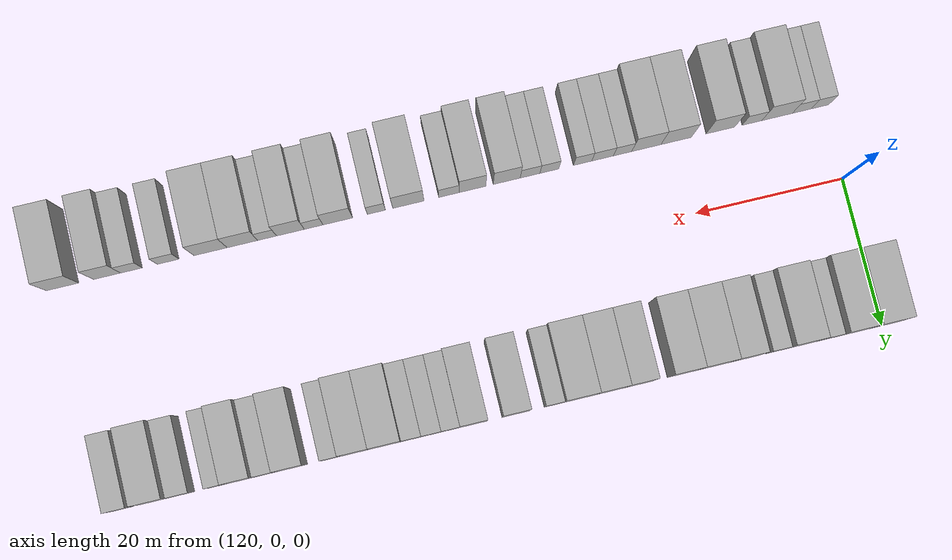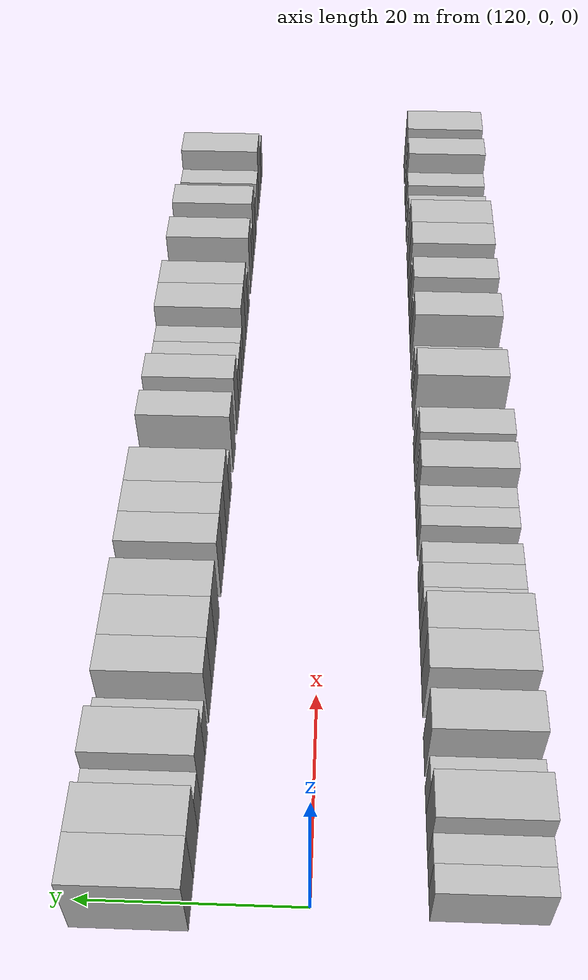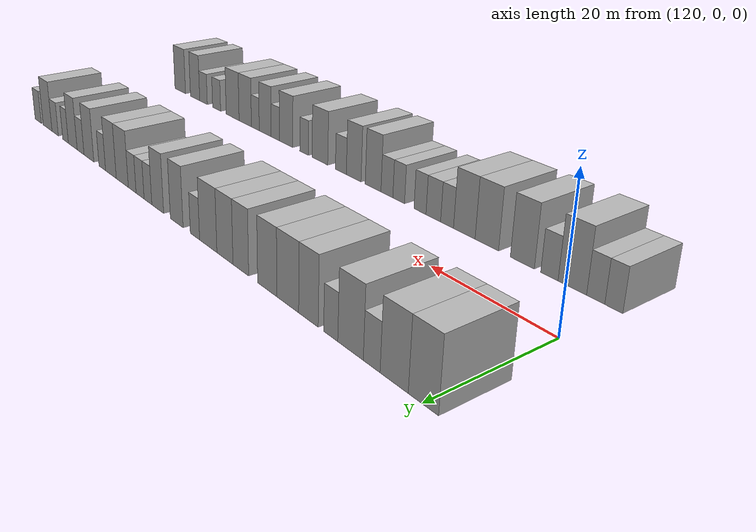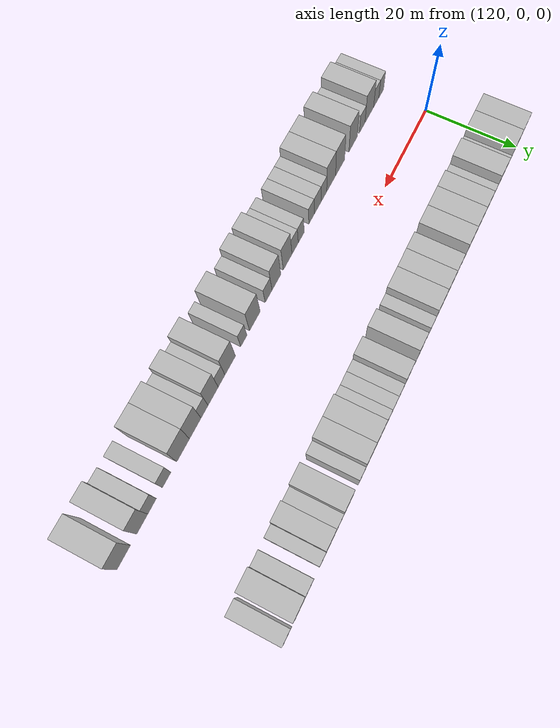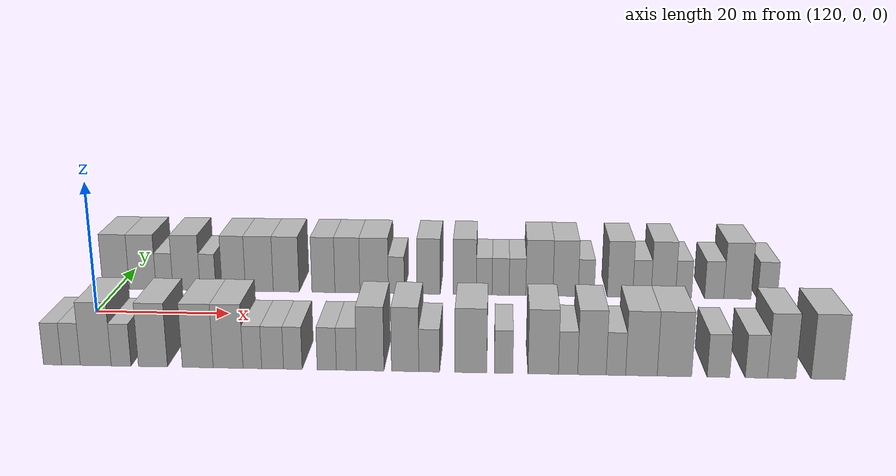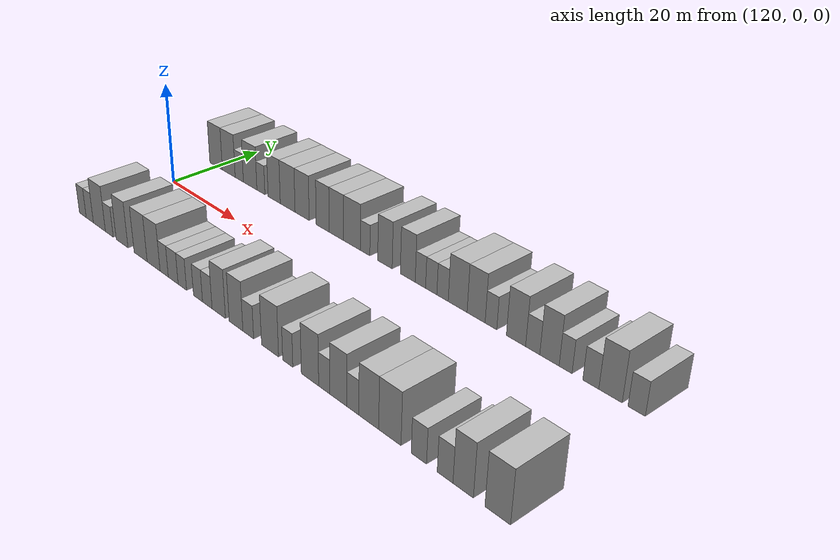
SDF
<sdf version="1.6">
 <world name="default">
  <model name="building_27">
   <static>1</static>
   <pose>119.8555 15.0000 0 0.000000 0.000000 1.570796</pose>
   <link name="link">
    <pose>0 0 4.50 0 0 0</pose>
    <collision name="collision"><geometry><box><size>10.0000 4.2542 9.0000</size></box></geometry></collision>
    <visual name="visual">
     <cast_shadows>0</cast_shadows>
     <geometry><box><size>10.0000 4.2542 9.0000</size></box></geometry>
     <material>
      <script>
       <uri>model://HANNAS_wall/materials/scripts</uri>
       <uri>model://HANNAS_wall/materials/textures</uri>
       <name>vrc/HANNAS_wall</name>
      </script>
     </material>
    </visual>
   </link>
  </model>
  <model name="building_28">
   <static>1</static>
   <pose>124.1061 15.0000 0 0.000000 0.000000 1.570796</pose>
   <link name="link">
    <pose>0 0 4.50 0 0 0</pose>
    <collision name="collision"><geometry><box><size>10.0000 4.2471 9.0000</size></box></geometry></collision>
    <visual name="visual">
     <cast_shadows>0</cast_shadows>
     <geometry><box><size>10.0000 4.2471 9.0000</size></box></geometry>
     <material>
      <script>
       <uri>model://HANNAS_wall/materials/scripts</uri>
       <uri>model://HANNAS_wall/materials/textures</uri>
       <name>vrc/HANNAS_wall</name>
      </script>
     </material>
    </visual>
   </link>
  </model>
  <model name="building_29">
   <static>1</static>
   <pose>127.5682 15.0000 0 0.000000 0.000000 1.570796</pose>
   <link name="link">
    <pose>0 0 3.00 0 0 0</pose>
    <collision name="collision"><geometry><box><size>10.0000 2.6771 6.0000</size></box></geometry></collision>
    <visual name="visual">
     <cast_shadows>0</cast_shadows>
     <geometry><box><size>10.0000 2.6771 6.0000</size></box></geometry>
     <material>
      <script>
       <uri>model://HANNAS_wall/materials/scripts</uri>
       <uri>model://HANNAS_wall/materials/textures</uri>
       <name>vrc/HANNAS_wall</name>
      </script>
     </material>
    </visual>
   </link>
  </model>
  <model name="building_30">
   <static>1</static>
   <pose>131.0592 15.0000 0 0.000000 0.000000 1.570796</pose>
   <link name="link">
    <pose>0 0 4.50 0 0 0</pose>
    <collision name="collision"><geometry><box><size>10.0000 4.3049 9.0000</size></box></geometry></collision>
    <visual name="visual">
     <cast_shadows>0</cast_shadows>
     <geometry><box><size>10.0000 4.3049 9.0000</size></box></geometry>
     <material>
      <script>
       <uri>model://HANNAS_wall/materials/scripts</uri>
       <uri>model://HANNAS_wall/materials/textures</uri>
       <name>vrc/HANNAS_wall</name>
      </script>
     </material>
    </visual>
   </link>
  </model>
  <model name="building_31">
   <static>1</static>
   <pose>134.4650 15.0000 0 0.000000 0.000000 1.570796</pose>
   <link name="link">
    <pose>0 0 3.00 0 0 0</pose>
    <collision name="collision"><geometry><box><size>10.0000 2.5067 6.0000</size></box></geometry></collision>
    <visual name="visual">
     <cast_shadows>0</cast_shadows>
     <geometry><box><size>10.0000 2.5067 6.0000</size></box></geometry>
     <material>
      <script>
       <uri>model://HANNAS_wall/materials/scripts</uri>
       <uri>model://HANNAS_wall/materials/textures</uri>
       <name>vrc/HANNAS_wall</name>
      </script>
     </material>
    </visual>
   </link>
  </model>
  <model name="building_32">
   <static>1</static>
   <pose>138.5697 15.0000 0 0.000000 0.000000 1.570796</pose>
   <link name="link">
    <pose>0 0 4.50 0 0 0</pose>
    <collision name="collision"><geometry><box><size>10.0000 3.7027 9.0000</size></box></geometry></collision>
    <visual name="visual">
     <cast_shadows>0</cast_shadows>
     <geometry><box><size>10.0000 3.7027 9.0000</size></box></geometry>
     <material>
      <script>
       <uri>model://HANNAS_wall/materials/scripts</uri>
       <uri>model://HANNAS_wall/materials/textures</uri>
       <name>vrc/HANNAS_wall</name>
      </script>
     </material>
    </visual>
   </link>
  </model>
  <model name="building_33">
   <static>1</static>
   <pose>142.6201 15.0000 0 0.000000 0.000000 1.570796</pose>
   <link name="link">
    <pose>0 0 4.50 0 0 0</pose>
    <collision name="collision"><geometry><box><size>10.0000 4.3982 9.0000</size></box></geometry></collision>
    <visual name="visual">
     <cast_shadows>0</cast_shadows>
     <geometry><box><size>10.0000 4.3982 9.0000</size></box></geometry>
     <material>
      <script>
       <uri>model://HANNAS_wall/materials/scripts</uri>
       <uri>model://HANNAS_wall/materials/textures</uri>
       <name>vrc/HANNAS_wall</name>
      </script>
     </material>
    </visual>
   </link>
  </model>
  <model name="building_34">
   <static>1</static>
   <pose>146.8642 15.0000 0 0.000000 0.000000 1.570796</pose>
   <link name="link">
    <pose>0 0 4.50 0 0 0</pose>
    <collision name="collision"><geometry><box><size>10.0000 4.0901 9.0000</size></box></geometry></collision>
    <visual name="visual">
     <cast_shadows>0</cast_shadows>
     <geometry><box><size>10.0000 4.0901 9.0000</size></box></geometry>
     <material>
      <script>
       <uri>model://HANNAS_wall/materials/scripts</uri>
       <uri>model://HANNAS_wall/materials/textures</uri>
       <name>vrc/HANNAS_wall</name>
      </script>
     </material>
    </visual>
   </link>
  </model>
  <model name="building_35">
   <static>1</static>
   <pose>152.7222 15.0000 0 0.000000 0.000000 1.570796</pose>
   <link name="link">
    <pose>0 0 4.50 0 0 0</pose>
    <collision name="collision"><geometry><box><size>10.0000 3.6258 9.0000</size></box></geometry></collision>
    <visual name="visual">
     <cast_shadows>0</cast_shadows>
     <geometry><box><size>10.0000 3.6258 9.0000</size></box></geometry>
     <material>
      <script>
       <uri>model://HANNAS_wall/materials/scripts</uri>
       <uri>model://HANNAS_wall/materials/textures</uri>
       <name>vrc/HANNAS_wall</name>
      </script>
     </material>
    </visual>
   </link>
  </model>
  <model name="building_36">
   <static>1</static>
   <pose>156.4994 15.0000 0 0.000000 0.000000 1.570796</pose>
   <link name="link">
    <pose>0 0 4.50 0 0 0</pose>
    <collision name="collision"><geometry><box><size>10.0000 3.9287 9.0000</size></box></geometry></collision>
    <visual name="visual">
     <cast_shadows>0</cast_shadows>
     <geometry><box><size>10.0000 3.9287 9.0000</size></box></geometry>
     <material>
      <script>
       <uri>model://HANNAS_wall/materials/scripts</uri>
       <uri>model://HANNAS_wall/materials/textures</uri>
       <name>vrc/HANNAS_wall</name>
      </script>
     </material>
    </visual>
   </link>
  </model>
  <model name="building_37">
   <static>1</static>
   <pose>160.6866 15.0000 0 0.000000 0.000000 1.570796</pose>
   <link name="link">
    <pose>0 0 4.50 0 0 0</pose>
    <collision name="collision"><geometry><box><size>10.0000 4.4457 9.0000</size></box></geometry></collision>
    <visual name="visual">
     <cast_shadows>0</cast_shadows>
     <geometry><box><size>10.0000 4.4457 9.0000</size></box></geometry>
     <material>
      <script>
       <uri>model://HANNAS_wall/materials/scripts</uri>
       <uri>model://HANNAS_wall/materials/textures</uri>
       <name>vrc/HANNAS_wall</name>
      </script>
     </material>
    </visual>
   </link>
  </model>
  <model name="building_38">
   <static>1</static>
   <pose>164.1530 15.0000 0 0.000000 0.000000 1.570796</pose>
   <link name="link">
    <pose>0 0 3.00 0 0 0</pose>
    <collision name="collision"><geometry><box><size>10.0000 2.4872 6.0000</size></box></geometry></collision>
    <visual name="visual">
     <cast_shadows>0</cast_shadows>
     <geometry><box><size>10.0000 2.4872 6.0000</size></box></geometry>
     <material>
      <script>
       <uri>model://HANNAS_wall/materials/scripts</uri>
       <uri>model://HANNAS_wall/materials/textures</uri>
       <name>vrc/HANNAS_wall</name>
      </script>
     </material>
    </visual>
   </link>
  </model>
  <model name="building_39">
   <static>1</static>
   <pose>169.2162 15.0000 0 0.000000 0.000000 1.570796</pose>
   <link name="link">
    <pose>0 0 4.50 0 0 0</pose>
    <collision name="collision"><geometry><box><size>10.0000 3.6392 9.0000</size></box></geometry></collision>
    <visual name="visual">
     <cast_shadows>0</cast_shadows>
     <geometry><box><size>10.0000 3.6392 9.0000</size></box></geometry>
     <material>
      <script>
       <uri>model://HANNAS_wall/materials/scripts</uri>
       <uri>model://HANNAS_wall/materials/textures</uri>
       <name>vrc/HANNAS_wall</name>
      </script>
     </material>
    </visual>
   </link>
  </model>
  <model name="building_40">
   <static>1</static>
   <pose>174.8434 15.0000 0 0.000000 0.000000 1.570796</pose>
   <link name="link">
    <pose>0 0 4.50 0 0 0</pose>
    <collision name="collision"><geometry><box><size>10.0000 3.6151 9.0000</size></box></geometry></collision>
    <visual name="visual">
     <cast_shadows>0</cast_shadows>
     <geometry><box><size>10.0000 3.6151 9.0000</size></box></geometry>
     <material>
      <script>
       <uri>model://HANNAS_wall/materials/scripts</uri>
       <uri>model://HANNAS_wall/materials/textures</uri>
       <name>vrc/HANNAS_wall</name>
      </script>
     </material>
    </visual>
   </link>
  </model>
  <model name="building_41">
   <static>1</static>
   <pose>177.8762 15.0000 0 0.000000 0.000000 1.570796</pose>
   <link name="link">
    <pose>0 0 3.00 0 0 0</pose>
    <collision name="collision"><geometry><box><size>10.0000 2.4505 6.0000</size></box></geometry></collision>
    <visual name="visual">
     <cast_shadows>0</cast_shadows>
     <geometry><box><size>10.0000 2.4505 6.0000</size></box></geometry>
     <material>
      <script>
       <uri>model://HANNAS_wall/materials/scripts</uri>
       <uri>model://HANNAS_wall/materials/textures</uri>
       <name>vrc/HANNAS_wall</name>
      </script>
     </material>
    </visual>
   </link>
  </model>
  <model name="building_42">
   <static>1</static>
   <pose>180.4161 15.0000 0 0.000000 0.000000 1.570796</pose>
   <link name="link">
    <pose>0 0 3.00 0 0 0</pose>
    <collision name="collision"><geometry><box><size>10.0000 2.6292 6.0000</size></box></geometry></collision>
    <visual name="visual">
     <cast_shadows>0</cast_shadows>
     <geometry><box><size>10.0000 2.6292 6.0000</size></box></geometry>
     <material>
      <script>
       <uri>model://HANNAS_wall/materials/scripts</uri>
       <uri>model://HANNAS_wall/materials/textures</uri>
       <name>vrc/HANNAS_wall</name>
      </script>
     </material>
    </visual>
   </link>
  </model>
  <model name="building_43">
   <static>1</static>
   <pose>183.0317 15.0000 0 0.000000 0.000000 1.570796</pose>
   <link name="link">
    <pose>0 0 3.00 0 0 0</pose>
    <collision name="collision"><geometry><box><size>10.0000 2.6020 6.0000</size></box></geometry></collision>
    <visual name="visual">
     <cast_shadows>0</cast_shadows>
     <geometry><box><size>10.0000 2.6020 6.0000</size></box></geometry>
     <material>
      <script>
       <uri>model://HANNAS_wall/materials/scripts</uri>
       <uri>model://HANNAS_wall/materials/textures</uri>
       <name>vrc/HANNAS_wall</name>
      </script>
     </material>
    </visual>
   </link>
  </model>
  <model name="building_44">
   <static>1</static>
   <pose>186.4371 15.0000 0 0.000000 0.000000 1.570796</pose>
   <link name="link">
    <pose>0 0 4.50 0 0 0</pose>
    <collision name="collision"><geometry><box><size>10.0000 4.2088 9.0000</size></box></geometry></collision>
    <visual name="visual">
     <cast_shadows>0</cast_shadows>
     <geometry><box><size>10.0000 4.2088 9.0000</size></box></geometry>
     <material>
      <script>
       <uri>model://HANNAS_wall/materials/scripts</uri>
       <uri>model://HANNAS_wall/materials/textures</uri>
       <name>vrc/HANNAS_wall</name>
      </script>
     </material>
    </visual>
   </link>
  </model>
  <model name="building_45">
   <static>1</static>
   <pose>190.4963 15.0000 0 0.000000 0.000000 1.570796</pose>
   <link name="link">
    <pose>0 0 4.50 0 0 0</pose>
    <collision name="collision"><geometry><box><size>10.0000 3.9095 9.0000</size></box></geometry></collision>
    <visual name="visual">
     <cast_shadows>0</cast_shadows>
     <geometry><box><size>10.0000 3.9095 9.0000</size></box></geometry>
     <material>
      <script>
       <uri>model://HANNAS_wall/materials/scripts</uri>
       <uri>model://HANNAS_wall/materials/textures</uri>
       <name>vrc/HANNAS_wall</name>
      </script>
     </material>
    </visual>
   </link>
  </model>
  <model name="building_46">
   <static>1</static>
   <pose>193.6895 15.0000 0 0.000000 0.000000 1.570796</pose>
   <link name="link">
    <pose>0 0 3.00 0 0 0</pose>
    <collision name="collision"><geometry><box><size>10.0000 2.4771 6.0000</size></box></geometry></collision>
    <visual name="visual">
     <cast_shadows>0</cast_shadows>
     <geometry><box><size>10.0000 2.4771 6.0000</size></box></geometry>
     <material>
      <script>
       <uri>model://HANNAS_wall/materials/scripts</uri>
       <uri>model://HANNAS_wall/materials/textures</uri>
       <name>vrc/HANNAS_wall</name>
      </script>
     </material>
    </visual>
   </link>
  </model>
  <model name="building_47">
   <static>1</static>
   <pose>198.8887 15.0000 0 0.000000 0.000000 1.570796</pose>
   <link name="link">
    <pose>0 0 4.50 0 0 0</pose>
    <collision name="collision"><geometry><box><size>10.0000 3.9212 9.0000</size></box></geometry></collision>
    <visual name="visual">
     <cast_shadows>0</cast_shadows>
     <geometry><box><size>10.0000 3.9212 9.0000</size></box></geometry>
     <material>
      <script>
       <uri>model://HANNAS_wall/materials/scripts</uri>
       <uri>model://HANNAS_wall/materials/textures</uri>
       <name>vrc/HANNAS_wall</name>
      </script>
     </material>
    </visual>
   </link>
  </model>
  <model name="building_48">
   <static>1</static>
   <pose>202.2613 15.0000 0 0.000000 0.000000 1.570796</pose>
   <link name="link">
    <pose>0 0 3.00 0 0 0</pose>
    <collision name="collision"><geometry><box><size>10.0000 2.8240 6.0000</size></box></geometry></collision>
    <visual name="visual">
     <cast_shadows>0</cast_shadows>
     <geometry><box><size>10.0000 2.8240 6.0000</size></box></geometry>
     <material>
      <script>
       <uri>model://HANNAS_wall/materials/scripts</uri>
       <uri>model://HANNAS_wall/materials/textures</uri>
       <name>vrc/HANNAS_wall</name>
      </script>
     </material>
    </visual>
   </link>
  </model>
  <model name="building_49">
   <static>1</static>
   <pose>205.5533 15.0000 0 0.000000 0.000000 1.570796</pose>
   <link name="link">
    <pose>0 0 4.50 0 0 0</pose>
    <collision name="collision"><geometry><box><size>10.0000 3.7601 9.0000</size></box></geometry></collision>
    <visual name="visual">
     <cast_shadows>0</cast_shadows>
     <geometry><box><size>10.0000 3.7601 9.0000</size></box></geometry>
     <material>
      <script>
       <uri>model://HANNAS_wall/materials/scripts</uri>
       <uri>model://HANNAS_wall/materials/textures</uri>
       <name>vrc/HANNAS_wall</name>
      </script>
     </material>
    </visual>
   </link>
  </model>
  <model name="building_50">
   <static>1</static>
   <pose>208.6606 15.0000 0 0.000000 0.000000 1.570796</pose>
   <link name="link">
    <pose>0 0 3.00 0 0 0</pose>
    <collision name="collision"><geometry><box><size>10.0000 2.4545 6.0000</size></box></geometry></collision>
    <visual name="visual">
     <cast_shadows>0</cast_shadows>
     <geometry><box><size>10.0000 2.4545 6.0000</size></box></geometry>
     <material>
      <script>
       <uri>model://HANNAS_wall/materials/scripts</uri>
       <uri>model://HANNAS_wall/materials/textures</uri>
       <name>vrc/HANNAS_wall</name>
      </script>
     </material>
    </visual>
   </link>
  </model>
  <model name="building_51">
   <static>1</static>
   <pose>213.3533 15.0000 0 0.000000 0.000000 1.570796</pose>
   <link name="link">
    <pose>0 0 3.00 0 0 0</pose>
    <collision name="collision"><geometry><box><size>10.0000 2.9310 6.0000</size></box></geometry></collision>
    <visual name="visual">
     <cast_shadows>0</cast_shadows>
     <geometry><box><size>10.0000 2.9310 6.0000</size></box></geometry>
     <material>
      <script>
       <uri>model://HANNAS_wall/materials/scripts</uri>
       <uri>model://HANNAS_wall/materials/textures</uri>
       <name>vrc/HANNAS_wall</name>
      </script>
     </material>
    </visual>
   </link>
  </model>
  <model name="building_52">
   <static>1</static>
   <pose>216.9027 15.0000 0 0.000000 0.000000 1.570796</pose>
   <link name="link">
    <pose>0 0 4.50 0 0 0</pose>
    <collision name="collision"><geometry><box><size>10.0000 4.1677 9.0000</size></box></geometry></collision>
    <visual name="visual">
     <cast_shadows>0</cast_shadows>
     <geometry><box><size>10.0000 4.1677 9.0000</size></box></geometry>
     <material>
      <script>
       <uri>model://HANNAS_wall/materials/scripts</uri>
       <uri>model://HANNAS_wall/materials/textures</uri>
       <name>vrc/HANNAS_wall</name>
      </script>
     </material>
    </visual>
   </link>
  </model>
  <model name="building_53">
   <static>1</static>
   <pose>221.4834 15.0000 0 0.000000 0.000000 1.570796</pose>
   <link name="link">
    <pose>0 0 3.00 0 0 0</pose>
    <collision name="collision"><geometry><box><size>10.0000 2.9938 6.0000</size></box></geometry></collision>
    <visual name="visual">
     <cast_shadows>0</cast_shadows>
     <geometry><box><size>10.0000 2.9938 6.0000</size></box></geometry>
     <material>
      <script>
       <uri>model://HANNAS_wall/materials/scripts</uri>
       <uri>model://HANNAS_wall/materials/textures</uri>
       <name>vrc/HANNAS_wall</name>
      </script>
     </material>
    </visual>
   </link>
  </model>
  <model name="building_82">
   <static>1</static>
   <pose>120.4411 -15.0000 0 0.000000 0.000000 1.570796</pose>
   <link name="link">
    <pose>0 0 3.00 0 0 0</pose>
    <collision name="collision"><geometry><box><size>10.0000 2.4455 6.0000</size></box></geometry></collision>
    <visual name="visual">
     <cast_shadows>0</cast_shadows>
     <geometry><box><size>10.0000 2.4455 6.0000</size></box></geometry>
     <material>
      <script>
       <uri>model://HANNAS_wall/materials/scripts</uri>
       <uri>model://HANNAS_wall/materials/textures</uri>
       <name>vrc/HANNAS_wall</name>
      </script>
     </material>
    </visual>
   </link>
  </model>
  <model name="building_83">
   <static>1</static>
   <pose>122.9377 -15.0000 0 0.000000 0.000000 1.570796</pose>
   <link name="link">
    <pose>0 0 3.00 0 0 0</pose>
    <collision name="collision"><geometry><box><size>10.0000 2.5479 6.0000</size></box></geometry></collision>
    <visual name="visual">
     <cast_shadows>0</cast_shadows>
     <geometry><box><size>10.0000 2.5479 6.0000</size></box></geometry>
     <material>
      <script>
       <uri>model://HANNAS_wall/materials/scripts</uri>
       <uri>model://HANNAS_wall/materials/textures</uri>
       <name>vrc/HANNAS_wall</name>
      </script>
     </material>
    </visual>
   </link>
  </model>
  <model name="building_84">
   <static>1</static>
   <pose>126.3077 -15.0000 0 0.000000 0.000000 1.570796</pose>
   <link name="link">
    <pose>0 0 4.50 0 0 0</pose>
    <collision name="collision"><geometry><box><size>10.0000 4.1920 9.0000</size></box></geometry></collision>
    <visual name="visual">
     <cast_shadows>0</cast_shadows>
     <geometry><box><size>10.0000 4.1920 9.0000</size></box></geometry>
     <material>
      <script>
       <uri>model://HANNAS_wall/materials/scripts</uri>
       <uri>model://HANNAS_wall/materials/textures</uri>
       <name>vrc/HANNAS_wall</name>
      </script>
     </material>
    </visual>
   </link>
  </model>
  <model name="building_85">
   <static>1</static>
   <pose>129.7392 -15.0000 0 0.000000 0.000000 1.570796</pose>
   <link name="link">
    <pose>0 0 3.00 0 0 0</pose>
    <collision name="collision"><geometry><box><size>10.0000 2.6710 6.0000</size></box></geometry></collision>
    <visual name="visual">
     <cast_shadows>0</cast_shadows>
     <geometry><box><size>10.0000 2.6710 6.0000</size></box></geometry>
     <material>
      <script>
       <uri>model://HANNAS_wall/materials/scripts</uri>
       <uri>model://HANNAS_wall/materials/textures</uri>
       <name>vrc/HANNAS_wall</name>
      </script>
     </material>
    </visual>
   </link>
  </model>
  <model name="building_86">
   <static>1</static>
   <pose>134.0358 -15.0000 0 0.000000 0.000000 1.570796</pose>
   <link name="link">
    <pose>0 0 4.50 0 0 0</pose>
    <collision name="collision"><geometry><box><size>10.0000 3.9222 9.0000</size></box></geometry></collision>
    <visual name="visual">
     <cast_shadows>0</cast_shadows>
     <geometry><box><size>10.0000 3.9222 9.0000</size></box></geometry>
     <material>
      <script>
       <uri>model://HANNAS_wall/materials/scripts</uri>
       <uri>model://HANNAS_wall/materials/textures</uri>
       <name>vrc/HANNAS_wall</name>
      </script>
     </material>
    </visual>
   </link>
  </model>
  <model name="building_87">
   <static>1</static>
   <pose>140.0731 -15.0000 0 0.000000 0.000000 1.570796</pose>
   <link name="link">
    <pose>0 0 4.50 0 0 0</pose>
    <collision name="collision"><geometry><box><size>10.0000 4.1524 9.0000</size></box></geometry></collision>
    <visual name="visual">
     <cast_shadows>0</cast_shadows>
     <geometry><box><size>10.0000 4.1524 9.0000</size></box></geometry>
     <material>
      <script>
       <uri>model://HANNAS_wall/materials/scripts</uri>
       <uri>model://HANNAS_wall/materials/textures</uri>
       <name>vrc/HANNAS_wall</name>
      </script>
     </material>
    </visual>
   </link>
  </model>
  <model name="building_88">
   <static>1</static>
   <pose>144.1564 -15.0000 0 0.000000 0.000000 1.570796</pose>
   <link name="link">
    <pose>0 0 4.50 0 0 0</pose>
    <collision name="collision"><geometry><box><size>10.0000 4.0142 9.0000</size></box></geometry></collision>
    <visual name="visual">
     <cast_shadows>0</cast_shadows>
     <geometry><box><size>10.0000 4.0142 9.0000</size></box></geometry>
     <material>
      <script>
       <uri>model://HANNAS_wall/materials/scripts</uri>
       <uri>model://HANNAS_wall/materials/textures</uri>
       <name>vrc/HANNAS_wall</name>
      </script>
     </material>
    </visual>
   </link>
  </model>
  <model name="building_89">
   <static>1</static>
   <pose>147.4107 -15.0000 0 0.000000 0.000000 1.570796</pose>
   <link name="link">
    <pose>0 0 3.00 0 0 0</pose>
    <collision name="collision"><geometry><box><size>10.0000 2.4943 6.0000</size></box></geometry></collision>
    <visual name="visual">
     <cast_shadows>0</cast_shadows>
     <geometry><box><size>10.0000 2.4943 6.0000</size></box></geometry>
     <material>
      <script>
       <uri>model://HANNAS_wall/materials/scripts</uri>
       <uri>model://HANNAS_wall/materials/textures</uri>
       <name>vrc/HANNAS_wall</name>
      </script>
     </material>
    </visual>
   </link>
  </model>
  <model name="building_90">
   <static>1</static>
   <pose>150.1211 -15.0000 0 0.000000 0.000000 1.570796</pose>
   <link name="link">
    <pose>0 0 3.00 0 0 0</pose>
    <collision name="collision"><geometry><box><size>10.0000 2.9267 6.0000</size></box></geometry></collision>
    <visual name="visual">
     <cast_shadows>0</cast_shadows>
     <geometry><box><size>10.0000 2.9267 6.0000</size></box></geometry>
     <material>
      <script>
       <uri>model://HANNAS_wall/materials/scripts</uri>
       <uri>model://HANNAS_wall/materials/textures</uri>
       <name>vrc/HANNAS_wall</name>
      </script>
     </material>
    </visual>
   </link>
  </model>
  <model name="building_91">
   <static>1</static>
   <pose>152.8282 -15.0000 0 0.000000 0.000000 1.570796</pose>
   <link name="link">
    <pose>0 0 3.00 0 0 0</pose>
    <collision name="collision"><geometry><box><size>10.0000 2.4874 6.0000</size></box></geometry></collision>
    <visual name="visual">
     <cast_shadows>0</cast_shadows>
     <geometry><box><size>10.0000 2.4874 6.0000</size></box></geometry>
     <material>
      <script>
       <uri>model://HANNAS_wall/materials/scripts</uri>
       <uri>model://HANNAS_wall/materials/textures</uri>
       <name>vrc/HANNAS_wall</name>
      </script>
     </material>
    </visual>
   </link>
  </model>
  <model name="building_92">
   <static>1</static>
   <pose>157.3483 -15.0000 0 0.000000 0.000000 1.570796</pose>
   <link name="link">
    <pose>0 0 3.00 0 0 0</pose>
    <collision name="collision"><geometry><box><size>10.0000 2.5528 6.0000</size></box></geometry></collision>
    <visual name="visual">
     <cast_shadows>0</cast_shadows>
     <geometry><box><size>10.0000 2.5528 6.0000</size></box></geometry>
     <material>
      <script>
       <uri>model://HANNAS_wall/materials/scripts</uri>
       <uri>model://HANNAS_wall/materials/textures</uri>
       <name>vrc/HANNAS_wall</name>
      </script>
     </material>
    </visual>
   </link>
  </model>
  <model name="building_93">
   <static>1</static>
   <pose>159.9591 -15.0000 0 0.000000 0.000000 1.570796</pose>
   <link name="link">
    <pose>0 0 3.00 0 0 0</pose>
    <collision name="collision"><geometry><box><size>10.0000 2.6688 6.0000</size></box></geometry></collision>
    <visual name="visual">
     <cast_shadows>0</cast_shadows>
     <geometry><box><size>10.0000 2.6688 6.0000</size></box></geometry>
     <material>
      <script>
       <uri>model://HANNAS_wall/materials/scripts</uri>
       <uri>model://HANNAS_wall/materials/textures</uri>
       <name>vrc/HANNAS_wall</name>
      </script>
     </material>
    </visual>
   </link>
  </model>
  <model name="building_94">
   <static>1</static>
   <pose>163.1216 -15.0000 0 0.000000 0.000000 1.570796</pose>
   <link name="link">
    <pose>0 0 4.50 0 0 0</pose>
    <collision name="collision"><geometry><box><size>10.0000 3.6561 9.0000</size></box></geometry></collision>
    <visual name="visual">
     <cast_shadows>0</cast_shadows>
     <geometry><box><size>10.0000 3.6561 9.0000</size></box></geometry>
     <material>
      <script>
       <uri>model://HANNAS_wall/materials/scripts</uri>
       <uri>model://HANNAS_wall/materials/textures</uri>
       <name>vrc/HANNAS_wall</name>
      </script>
     </material>
    </visual>
   </link>
  </model>
  <model name="building_95">
   <static>1</static>
   <pose>167.7519 -15.0000 0 0.000000 0.000000 1.570796</pose>
   <link name="link">
    <pose>0 0 4.50 0 0 0</pose>
    <collision name="collision"><geometry><box><size>10.0000 3.6045 9.0000</size></box></geometry></collision>
    <visual name="visual">
     <cast_shadows>0</cast_shadows>
     <geometry><box><size>10.0000 3.6045 9.0000</size></box></geometry>
     <material>
      <script>
       <uri>model://HANNAS_wall/materials/scripts</uri>
       <uri>model://HANNAS_wall/materials/textures</uri>
       <name>vrc/HANNAS_wall</name>
      </script>
     </material>
    </visual>
   </link>
  </model>
  <model name="building_96">
   <static>1</static>
   <pose>170.9366 -15.0000 0 0.000000 0.000000 1.570796</pose>
   <link name="link">
    <pose>0 0 3.00 0 0 0</pose>
    <collision name="collision"><geometry><box><size>10.0000 2.7650 6.0000</size></box></geometry></collision>
    <visual name="visual">
     <cast_shadows>0</cast_shadows>
     <geometry><box><size>10.0000 2.7650 6.0000</size></box></geometry>
     <material>
      <script>
       <uri>model://HANNAS_wall/materials/scripts</uri>
       <uri>model://HANNAS_wall/materials/textures</uri>
       <name>vrc/HANNAS_wall</name>
      </script>
     </material>
    </visual>
   </link>
  </model>
  <model name="building_97">
   <static>1</static>
   <pose>176.4247 -15.0000 0 0.000000 0.000000 1.570796</pose>
   <link name="link">
    <pose>0 0 4.50 0 0 0</pose>
    <collision name="collision"><geometry><box><size>10.0000 4.2112 9.0000</size></box></geometry></collision>
    <visual name="visual">
     <cast_shadows>0</cast_shadows>
     <geometry><box><size>10.0000 4.2112 9.0000</size></box></geometry>
     <material>
      <script>
       <uri>model://HANNAS_wall/materials/scripts</uri>
       <uri>model://HANNAS_wall/materials/textures</uri>
       <name>vrc/HANNAS_wall</name>
      </script>
     </material>
    </visual>
   </link>
  </model>
  <model name="building_98">
   <static>1</static>
   <pose>180.7450 -15.0000 0 0.000000 0.000000 1.570796</pose>
   <link name="link">
    <pose>0 0 3.00 0 0 0</pose>
    <collision name="collision"><geometry><box><size>10.0000 2.4293 6.0000</size></box></geometry></collision>
    <visual name="visual">
     <cast_shadows>0</cast_shadows>
     <geometry><box><size>10.0000 2.4293 6.0000</size></box></geometry>
     <material>
      <script>
       <uri>model://HANNAS_wall/materials/scripts</uri>
       <uri>model://HANNAS_wall/materials/textures</uri>
       <name>vrc/HANNAS_wall</name>
      </script>
     </material>
    </visual>
   </link>
  </model>
  <model name="building_99">
   <static>1</static>
   <pose>185.9530 -15.0000 0 0.000000 0.000000 1.570796</pose>
   <link name="link">
    <pose>0 0 4.50 0 0 0</pose>
    <collision name="collision"><geometry><box><size>10.0000 3.9868 9.0000</size></box></geometry></collision>
    <visual name="visual">
     <cast_shadows>0</cast_shadows>
     <geometry><box><size>10.0000 3.9868 9.0000</size></box></geometry>
     <material>
      <script>
       <uri>model://HANNAS_wall/materials/scripts</uri>
       <uri>model://HANNAS_wall/materials/textures</uri>
       <name>vrc/HANNAS_wall</name>
      </script>
     </material>
    </visual>
   </link>
  </model>
  <model name="building_100">
   <static>1</static>
   <pose>189.2060 -15.0000 0 0.000000 0.000000 1.570796</pose>
   <link name="link">
    <pose>0 0 3.00 0 0 0</pose>
    <collision name="collision"><geometry><box><size>10.0000 2.5192 6.0000</size></box></geometry></collision>
    <visual name="visual">
     <cast_shadows>0</cast_shadows>
     <geometry><box><size>10.0000 2.5192 6.0000</size></box></geometry>
     <material>
      <script>
       <uri>model://HANNAS_wall/materials/scripts</uri>
       <uri>model://HANNAS_wall/materials/textures</uri>
       <name>vrc/HANNAS_wall</name>
      </script>
     </material>
    </visual>
   </link>
  </model>
  <model name="building_101">
   <static>1</static>
   <pose>192.3293 -15.0000 0 0.000000 0.000000 1.570796</pose>
   <link name="link">
    <pose>0 0 4.50 0 0 0</pose>
    <collision name="collision"><geometry><box><size>10.0000 3.7275 9.0000</size></box></geometry></collision>
    <visual name="visual">
     <cast_shadows>0</cast_shadows>
     <geometry><box><size>10.0000 3.7275 9.0000</size></box></geometry>
     <material>
      <script>
       <uri>model://HANNAS_wall/materials/scripts</uri>
       <uri>model://HANNAS_wall/materials/textures</uri>
       <name>vrc/HANNAS_wall</name>
      </script>
     </material>
    </visual>
   </link>
  </model>
  <model name="building_102">
   <static>1</static>
   <pose>195.4604 -15.0000 0 0.000000 0.000000 1.570796</pose>
   <link name="link">
    <pose>0 0 3.00 0 0 0</pose>
    <collision name="collision"><geometry><box><size>10.0000 2.5348 6.0000</size></box></geometry></collision>
    <visual name="visual">
     <cast_shadows>0</cast_shadows>
     <geometry><box><size>10.0000 2.5348 6.0000</size></box></geometry>
     <material>
      <script>
       <uri>model://HANNAS_wall/materials/scripts</uri>
       <uri>model://HANNAS_wall/materials/textures</uri>
       <name>vrc/HANNAS_wall</name>
      </script>
     </material>
    </visual>
   </link>
  </model>
  <model name="building_103">
   <static>1</static>
   <pose>198.7855 -15.0000 0 0.000000 0.000000 1.570796</pose>
   <link name="link">
    <pose>0 0 4.50 0 0 0</pose>
    <collision name="collision"><geometry><box><size>10.0000 4.1154 9.0000</size></box></geometry></collision>
    <visual name="visual">
     <cast_shadows>0</cast_shadows>
     <geometry><box><size>10.0000 4.1154 9.0000</size></box></geometry>
     <material>
      <script>
       <uri>model://HANNAS_wall/materials/scripts</uri>
       <uri>model://HANNAS_wall/materials/textures</uri>
       <name>vrc/HANNAS_wall</name>
      </script>
     </material>
    </visual>
   </link>
  </model>
  <model name="building_104">
   <static>1</static>
   <pose>203.0848 -15.0000 0 0.000000 0.000000 1.570796</pose>
   <link name="link">
    <pose>0 0 4.50 0 0 0</pose>
    <collision name="collision"><geometry><box><size>10.0000 4.4832 9.0000</size></box></geometry></collision>
    <visual name="visual">
     <cast_shadows>0</cast_shadows>
     <geometry><box><size>10.0000 4.4832 9.0000</size></box></geometry>
     <material>
      <script>
       <uri>model://HANNAS_wall/materials/scripts</uri>
       <uri>model://HANNAS_wall/materials/textures</uri>
       <name>vrc/HANNAS_wall</name>
      </script>
     </material>
    </visual>
   </link>
  </model>
  <model name="building_105">
   <static>1</static>
   <pose>208.7875 -15.0000 0 0.000000 0.000000 1.570796</pose>
   <link name="link">
    <pose>0 0 3.00 0 0 0</pose>
    <collision name="collision"><geometry><box><size>10.0000 2.9222 6.0000</size></box></geometry></collision>
    <visual name="visual">
     <cast_shadows>0</cast_shadows>
     <geometry><box><size>10.0000 2.9222 6.0000</size></box></geometry>
     <material>
      <script>
       <uri>model://HANNAS_wall/materials/scripts</uri>
       <uri>model://HANNAS_wall/materials/textures</uri>
       <name>vrc/HANNAS_wall</name>
      </script>
     </material>
    </visual>
   </link>
  </model>
  <model name="building_106">
   <static>1</static>
   <pose>213.6928 -15.0000 0 0.000000 0.000000 1.570796</pose>
   <link name="link">
    <pose>0 0 3.00 0 0 0</pose>
    <collision name="collision"><geometry><box><size>10.0000 2.8884 6.0000</size></box></geometry></collision>
    <visual name="visual">
     <cast_shadows>0</cast_shadows>
     <geometry><box><size>10.0000 2.8884 6.0000</size></box></geometry>
     <material>
      <script>
       <uri>model://HANNAS_wall/materials/scripts</uri>
       <uri>model://HANNAS_wall/materials/textures</uri>
       <name>vrc/HANNAS_wall</name>
      </script>
     </material>
    </visual>
   </link>
  </model>
  <model name="building_107">
   <static>1</static>
   <pose>216.9554 -15.0000 0 0.000000 0.000000 1.570796</pose>
   <link name="link">
    <pose>0 0 4.50 0 0 0</pose>
    <collision name="collision"><geometry><box><size>10.0000 3.6368 9.0000</size></box></geometry></collision>
    <visual name="visual">
     <cast_shadows>0</cast_shadows>
     <geometry><box><size>10.0000 3.6368 9.0000</size></box></geometry>
     <material>
      <script>
       <uri>model://HANNAS_wall/materials/scripts</uri>
       <uri>model://HANNAS_wall/materials/textures</uri>
       <name>vrc/HANNAS_wall</name>
      </script>
     </material>
    </visual>
   </link>
  </model>
  <model name="building_108">
   <static>1</static>
   <pose>222.9408 -15.0000 0 0.000000 0.000000 1.570796</pose>
   <link name="link">
    <pose>0 0 4.50 0 0 0</pose>
    <collision name="collision"><geometry><box><size>10.0000 4.3339 9.0000</size></box></geometry></collision>
    <visual name="visual">
     <cast_shadows>0</cast_shadows>
     <geometry><box><size>10.0000 4.3339 9.0000</size></box></geometry>
     <material>
      <script>
       <uri>model://HANNAS_wall/materials/scripts</uri>
       <uri>model://HANNAS_wall/materials/textures</uri>
       <name>vrc/HANNAS_wall</name>
      </script>
     </material>
    </visual>
   </link>
  </model>
 </world>
</sdf>
